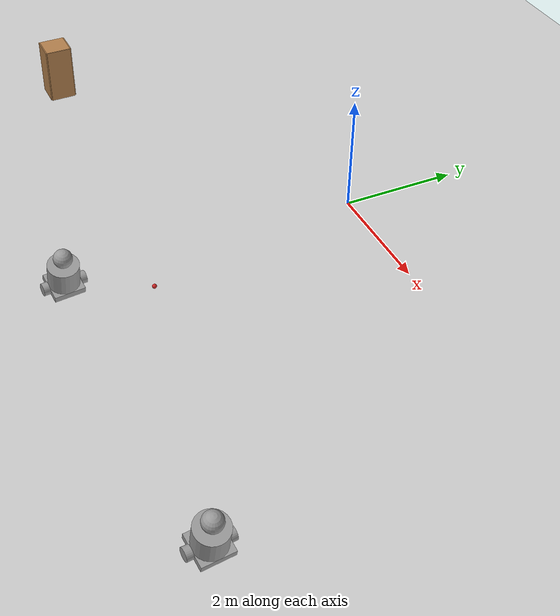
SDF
<sdf version="1.6">
 <world name="default">
  <model name="ground_plane">
   <static>1</static>
   <link name="link">
    <collision name="collision">
     <geometry><plane><normal>0 0 1</normal><size>100 100</size></plane></geometry>
     <surface>
      <contact><collide_bitmask>65535</collide_bitmask></contact>
      <friction><ode><mu>100</mu><mu2>50</mu2></ode></friction>
     </surface>
    </collision>
    <visual name="visual">
     <cast_shadows>0</cast_shadows>
     <geometry><plane><normal>0 0 1</normal><size>100 100</size></plane></geometry>
     <material>
      <script><uri>file://media/materials/scripts/gazebo.material</uri><name>Gazebo/Grey</name></script>
     </material>
    </visual>
   </link>
  </model>
  <model name="cabinet">
   <static>1</static>
   <link name="cabinet_bottom_plate">
    <inertial>
     <pose>0 0 -1 0 -0 0</pose>
     <inertia><ixx>2.05</ixx><ixy>0</ixy><ixz>0</ixz><iyy>2.05</iyy><iyz>0</iyz><izz>2.05</izz></inertia>
     <mass>25</mass>
    </inertial>
    <collision name="cabinet_bottom_plate_geom">
     <pose>0 0 0.01 0 -0 0</pose>
     <geometry><box><size>0.45 0.45 0.02</size></box></geometry>
    </collision>
    <visual name="cabinet_bottom_plate_geom_visual">
     <pose>0 0 0.01 0 -0 0</pose>
     <geometry><box><size>0.45 0.45 0.02</size></box></geometry>
     <material>
      <script><uri>file://media/materials/scripts/gazebo.material</uri><name>Gazebo/Wood</name></script>
     </material>
    </visual>
    <collision name="cabinet_bottom_plate_geom_cabinet_back_plate">
     <pose>0.235 0 0.51 0 -0 0</pose>
     <geometry><box><size>0.02 0.45 1.02</size></box></geometry>
    </collision>
    <visual name="cabinet_bottom_plate_geom_cabinet_back_plate_visual">
     <pose>0.235 0 0.51 0 -0 0</pose>
     <geometry><box><size>0.02 0.45 1.02</size></box></geometry>
     <material>
      <script><uri>file://media/materials/scripts/gazebo.material</uri><name>Gazebo/Wood</name></script>
     </material>
    </visual>
    <collision name="cabinet_bottom_plate_geom_cabinet_left_plate">
     <pose>0 0.235 0.51 0 -0 0</pose>
     <geometry><box><size>0.45 0.02 1.02</size></box></geometry>
    </collision>
    <visual name="cabinet_bottom_plate_geom_cabinet_left_plate_visual">
     <pose>0 0.235 0.51 0 -0 0</pose>
     <geometry><box><size>0.45 0.02 1.02</size></box></geometry>
     <material>
      <script><uri>file://media/materials/scripts/gazebo.material</uri><name>Gazebo/Wood</name></script>
     </material>
    </visual>
    <collision name="cabinet_bottom_plate_geom_cabinet_middle_plate">
     <pose>0 0 0.51 0 -0 0</pose>
     <geometry><box><size>0.45 0.45 0.02</size></box></geometry>
    </collision>
    <visual name="cabinet_bottom_plate_geom_cabinet_middle_plate_visual">
     <pose>0 0 0.51 0 -0 0</pose>
     <geometry><box><size>0.45 0.45 0.02</size></box></geometry>
     <material>
      <script><uri>file://media/materials/scripts/gazebo.material</uri><name>Gazebo/Wood</name></script>
     </material>
    </visual>
    <collision name="cabinet_bottom_plate_geom_cabinet_right_plate">
     <pose>0 -0.235 0.51 0 -0 0</pose>
     <geometry><box><size>0.45 0.02 1.02</size></box></geometry>
    </collision>
    <visual name="cabinet_bottom_plate_geom_cabinet_right_plate_visual">
     <pose>0 -0.235 0.51 0 -0 0</pose>
     <geometry><box><size>0.45 0.02 1.02</size></box></geometry>
     <material>
      <script><uri>file://media/materials/scripts/gazebo.material</uri><name>Gazebo/Wood</name></script>
     </material>
    </visual>
    <collision name="cabinet_bottom_plate_geom_cabinet_top_plate">
     <pose>0 0 1.01 0 -0 0</pose>
     <geometry><box><size>0.45 0.45 0.02</size></box></geometry>
    </collision>
    <visual name="cabinet_bottom_plate_geom_cabinet_top_plate_visual">
     <pose>0 0 1.01 0 -0 0</pose>
     <geometry><box><size>0.45 0.45 0.02</size></box></geometry>
     <material>
      <script><uri>file://media/materials/scripts/gazebo.material</uri><name>Gazebo/Wood</name></script>
     </material>
    </visual>
   </link>
   <pose>-5.45597 -3.36278 0 0 -0 0</pose>
  </model>
  <model name="RoboModel">
   <link name="link_0">
    <pose>0.004 1e-06 -0.17 0 -0 0</pose>
    <inertial>
     <mass>1</mass>
     <inertia>
      <ixx>0.166667</ixx>
      <ixy>0</ixy>
      <ixz>0</ixz>
      <iyy>0.166667</iyy>
      <iyz>0</iyz>
      <izz>0.166667</izz>
     </inertia>
    </inertial>
    <visual name="visual">
     <geometry><box><size>0.5 0.5 0.1</size></box></geometry>
     <material>
      <lighting>1</lighting>
      <script><uri>file://media/materials/scripts/gazebo.material</uri><name>Gazebo/Grey</name></script>
      <shader type="pixel"><normal_map>__default__</normal_map></shader>
      <ambient>0.3 0.3 0.3 1</ambient>
      <diffuse>0.7 0.7 0.7 1</diffuse>
      <specular>0.01 0.01 0.01 1</specular>
      <emissive>0 0 0 1</emissive>
     </material>
    </visual>
    <collision name="collision">
     <geometry><box><size>0.5 0.5 0.1</size></box></geometry>
     <surface>
      <friction>
       <ode><mu>1</mu><mu2>1</mu2><fdir1>0 0 0</fdir1><slip1>0</slip1><slip2>0</slip2></ode>
       <torsional>
        <coefficient>1</coefficient>
        <patch_radius>0</patch_radius>
        <surface_radius>0</surface_radius>
        <use_patch_radius>1</use_patch_radius>
        <ode><slip>0</slip></ode>
       </torsional>
      </friction>
      <bounce><restitution_coefficient>0</restitution_coefficient><threshold>1e+06</threshold></bounce>
      <contact>
       <collide_without_contact>0</collide_without_contact>
       <collide_without_contact_bitmask>1</collide_without_contact_bitmask>
       <collide_bitmask>1</collide_bitmask>
       <ode>
        <soft_cfm>0</soft_cfm>
        <soft_erp>0.2</soft_erp>
        <kp>1e+13</kp>
        <kd>1</kd>
        <max_vel>0.01</max_vel>
        <min_depth>0</min_depth>
       </ode>
       <bullet>
        <split_impulse>1</split_impulse>
        <split_impulse_penetration_threshold>-0.01</split_impulse_penetration_threshold>
        <soft_cfm>0</soft_cfm>
        <soft_erp>0.2</soft_erp>
        <kp>1e+13</kp>
        <kd>1</kd>
       </bullet>
      </contact>
     </surface>
    </collision>
   </link>
   <link name="link_1">
    <pose>0.004 1e-06 0.08 0 -0 0</pose>
    <inertial>
     <mass>1</mass>
     <inertia><ixx>0.145833</ixx><ixy>0</ixy><ixz>0</ixz><iyy>0.145833</iyy><iyz>0</iyz><izz>0.125</izz></inertia>
    </inertial>
    <visual name="visual">
     <geometry><cylinder><radius>0.25</radius><length>0.4</length></cylinder></geometry>
     <material>
      <lighting>1</lighting>
      <script><uri>file://media/materials/scripts/gazebo.material</uri><name>Gazebo/Grey</name></script>
      <shader type="pixel"><normal_map>__default__</normal_map></shader>
      <ambient>0.3 0.3 0.3 1</ambient>
      <diffuse>0.7 0.7 0.7 1</diffuse>
      <specular>0.01 0.01 0.01 1</specular>
      <emissive>0 0 0 1</emissive>
     </material>
    </visual>
    <collision name="collision">
     <geometry><cylinder><radius>0.25</radius><length>0.4</length></cylinder></geometry>
     <surface>
      <friction>
       <ode><mu>1</mu><mu2>1</mu2><fdir1>0 0 0</fdir1><slip1>0</slip1><slip2>0</slip2></ode>
       <torsional>
        <coefficient>1</coefficient>
        <patch_radius>0</patch_radius>
        <surface_radius>0</surface_radius>
        <use_patch_radius>1</use_patch_radius>
        <ode><slip>0</slip></ode>
       </torsional>
      </friction>
      <bounce><restitution_coefficient>0</restitution_coefficient><threshold>1e+06</threshold></bounce>
      <contact>
       <collide_without_contact>0</collide_without_contact>
       <collide_without_contact_bitmask>1</collide_without_contact_bitmask>
       <collide_bitmask>1</collide_bitmask>
       <ode>
        <soft_cfm>0</soft_cfm>
        <soft_erp>0.2</soft_erp>
        <kp>1e+13</kp>
        <kd>1</kd>
        <max_vel>0.01</max_vel>
        <min_depth>0</min_depth>
       </ode>
       <bullet>
        <split_impulse>1</split_impulse>
        <split_impulse_penetration_threshold>-0.01</split_impulse_penetration_threshold>
        <soft_cfm>0</soft_cfm>
        <soft_erp>0.2</soft_erp>
        <kp>1e+13</kp>
        <kd>1</kd>
       </bullet>
      </contact>
     </surface>
    </collision>
   </link>
   <link name="link_4">
    <pose>0.004 1e-06 0.43 0 -0 0</pose>
    <inertial>
     <mass>1</mass>
     <inertia><ixx>0.1</ixx><ixy>0</ixy><ixz>0</ixz><iyy>0.1</iyy><iyz>0</iyz><izz>0.1</izz></inertia>
    </inertial>
    <visual name="visual">
     <geometry><sphere><radius>0.15</radius></sphere></geometry>
     <material>
      <lighting>1</lighting>
      <script><uri>file://media/materials/scripts/gazebo.material</uri><name>Gazebo/Grey</name></script>
      <shader type="pixel"><normal_map>__default__</normal_map></shader>
      <ambient>0.3 0.3 0.3 1</ambient>
      <diffuse>0.7 0.7 0.7 1</diffuse>
      <specular>0.01 0.01 0.01 1</specular>
      <emissive>0 0 0 1</emissive>
     </material>
    </visual>
    <collision name="collision">
     <geometry><sphere><radius>0.15</radius></sphere></geometry>
     <surface>
      <friction>
       <ode><mu>1</mu><mu2>1</mu2><fdir1>0 0 0</fdir1><slip1>0</slip1><slip2>0</slip2></ode>
       <torsional>
        <coefficient>1</coefficient>
        <patch_radius>0</patch_radius>
        <surface_radius>0</surface_radius>
        <use_patch_radius>1</use_patch_radius>
        <ode><slip>0</slip></ode>
       </torsional>
      </friction>
      <bounce><restitution_coefficient>0</restitution_coefficient><threshold>1e+06</threshold></bounce>
      <contact>
       <collide_without_contact>0</collide_without_contact>
       <collide_without_contact_bitmask>1</collide_without_contact_bitmask>
       <collide_bitmask>1</collide_bitmask>
       <ode>
        <soft_cfm>0</soft_cfm>
        <soft_erp>0.2</soft_erp>
        <kp>1e+13</kp>
        <kd>1</kd>
        <max_vel>0.01</max_vel>
        <min_depth>0</min_depth>
       </ode>
       <bullet>
        <split_impulse>1</split_impulse>
        <split_impulse_penetration_threshold>-0.01</split_impulse_penetration_threshold>
        <soft_cfm>0</soft_cfm>
        <soft_erp>0.2</soft_erp>
        <kp>1e+13</kp>
        <kd>1</kd>
       </bullet>
      </contact>
     </surface>
    </collision>
   </link>
   <link name="link_5">
    <pose>-0.016 -0.300012 -0.17 1.5707 -0 0</pose>
    <inertial>
     <mass>1</mass>
     <inertia><ixx>0.145833</ixx><ixy>0</ixy><ixz>0</ixz><iyy>0.145833</iyy><iyz>0</iyz><izz>0.125</izz></inertia>
    </inertial>
    <visual name="visual">
     <geometry><cylinder><radius>0.1</radius><length>0.1</length></cylinder></geometry>
     <material>
      <lighting>1</lighting>
      <script><uri>file://media/materials/scripts/gazebo.material</uri><name>Gazebo/Grey</name></script>
      <shader type="pixel"><normal_map>__default__</normal_map></shader>
      <ambient>0.3 0.3 0.3 1</ambient>
      <diffuse>0.7 0.7 0.7 1</diffuse>
      <specular>0.01 0.01 0.01 1</specular>
      <emissive>0 0 0 1</emissive>
     </material>
    </visual>
    <collision name="collision">
     <geometry><cylinder><radius>0.1</radius><length>0.1</length></cylinder></geometry>
     <surface>
      <friction>
       <ode><mu>1</mu><mu2>1</mu2><fdir1>0 0 0</fdir1><slip1>0</slip1><slip2>0</slip2></ode>
       <torsional>
        <coefficient>1</coefficient>
        <patch_radius>0</patch_radius>
        <surface_radius>0</surface_radius>
        <use_patch_radius>1</use_patch_radius>
        <ode><slip>0</slip></ode>
       </torsional>
      </friction>
      <bounce><restitution_coefficient>0</restitution_coefficient><threshold>1e+06</threshold></bounce>
      <contact>
       <collide_without_contact>0</collide_without_contact>
       <collide_without_contact_bitmask>1</collide_without_contact_bitmask>
       <collide_bitmask>1</collide_bitmask>
       <ode>
        <soft_cfm>0</soft_cfm>
        <soft_erp>0.2</soft_erp>
        <kp>1e+13</kp>
        <kd>1</kd>
        <max_vel>0.01</max_vel>
        <min_depth>0</min_depth>
       </ode>
       <bullet>
        <split_impulse>1</split_impulse>
        <split_impulse_penetration_threshold>-0.01</split_impulse_penetration_threshold>
        <soft_cfm>0</soft_cfm>
        <soft_erp>0.2</soft_erp>
        <kp>1e+13</kp>
        <kd>1</kd>
       </bullet>
      </contact>
     </surface>
    </collision>
   </link>
   <link name="link_5_clone">
    <pose>0.004 0.30001 -0.17 1.5707 -0 0</pose>
    <inertial>
     <mass>1</mass>
     <inertia><ixx>0.145833</ixx><ixy>0</ixy><ixz>0</ixz><iyy>0.145833</iyy><iyz>0</iyz><izz>0.125</izz></inertia>
    </inertial>
    <visual name="visual">
     <geometry><cylinder><radius>0.1</radius><length>0.1</length></cylinder></geometry>
     <material>
      <lighting>1</lighting>
      <script><uri>file://media/materials/scripts/gazebo.material</uri><name>Gazebo/Grey</name></script>
      <shader type="pixel"><normal_map>__default__</normal_map></shader>
      <ambient>0.3 0.3 0.3 1</ambient>
      <diffuse>0.7 0.7 0.7 1</diffuse>
      <specular>0.01 0.01 0.01 1</specular>
      <emissive>0 0 0 1</emissive>
     </material>
    </visual>
    <collision name="collision">
     <geometry><cylinder><radius>0.1</radius><length>0.1</length></cylinder></geometry>
     <surface>
      <friction>
       <ode><mu>1</mu><mu2>1</mu2><fdir1>0 0 0</fdir1><slip1>0</slip1><slip2>0</slip2></ode>
       <torsional>
        <coefficient>1</coefficient>
        <patch_radius>0</patch_radius>
        <surface_radius>0</surface_radius>
        <use_patch_radius>1</use_patch_radius>
        <ode><slip>0</slip></ode>
       </torsional>
      </friction>
      <bounce><restitution_coefficient>0</restitution_coefficient><threshold>1e+06</threshold></bounce>
      <contact>
       <collide_without_contact>0</collide_without_contact>
       <collide_without_contact_bitmask>1</collide_without_contact_bitmask>
       <collide_bitmask>1</collide_bitmask>
       <ode>
        <soft_cfm>0</soft_cfm>
        <soft_erp>0.2</soft_erp>
        <kp>1e+13</kp>
        <kd>1</kd>
        <max_vel>0.01</max_vel>
        <min_depth>0</min_depth>
       </ode>
       <bullet>
        <split_impulse>1</split_impulse>
        <split_impulse_penetration_threshold>-0.01</split_impulse_penetration_threshold>
        <soft_cfm>0</soft_cfm>
        <soft_erp>0.2</soft_erp>
        <kp>1e+13</kp>
        <kd>1</kd>
       </bullet>
      </contact>
     </surface>
    </collision>
   </link>
   <joint name="link_0_JOINT_2" type="revolute">
    <parent>link_0</parent>
    <child>link_5_clone</child>
    <axis>
     <xyz>0 0 1</xyz>
     <use_parent_model_frame>0</use_parent_model_frame>
     <limit>
      <lower>-1.79769e+308</lower>
      <upper>1.79769e+308</upper>
      <effort>-1</effort>
      <velocity>-1</velocity>
     </limit>
     <dynamics>
      <spring_reference>0</spring_reference>
      <spring_stiffness>0</spring_stiffness>
      <damping>0</damping>
     </dynamics>
    </axis>
    <physics>
     <ode><limit><cfm>0</cfm><erp>0.2</erp></limit><suspension><cfm>0</cfm><erp>0.2</erp></suspension></ode>
    </physics>
   </joint>
   <joint name="link_0_JOINT_3" type="revolute">
    <parent>link_0</parent>
    <child>link_5</child>
    <axis>
     <xyz>0 0 -1</xyz>
     <use_parent_model_frame>0</use_parent_model_frame>
     <limit>
      <lower>-1.79769e+308</lower>
      <upper>1.79769e+308</upper>
      <effort>-1</effort>
      <velocity>-1</velocity>
     </limit>
     <dynamics>
      <spring_reference>0</spring_reference>
      <spring_stiffness>0</spring_stiffness>
      <damping>0</damping>
     </dynamics>
    </axis>
    <physics>
     <ode><limit><cfm>0</cfm><erp>0.2</erp></limit><suspension><cfm>0</cfm><erp>0.2</erp></suspension></ode>
    </physics>
   </joint>
   <joint name="link_0_JOINT_4" type="revolute">
    <parent>link_0</parent>
    <child>link_1</child>
    <axis>
     <xyz>0 0 1</xyz>
     <use_parent_model_frame>0</use_parent_model_frame>
     <limit>
      <lower>-1.79769e+308</lower>
      <upper>1.79769e+308</upper>
      <effort>-1</effort>
      <velocity>-1</velocity>
     </limit>
     <dynamics>
      <spring_reference>0</spring_reference>
      <spring_stiffness>0</spring_stiffness>
      <damping>0</damping>
     </dynamics>
    </axis>
    <physics>
     <ode><limit><cfm>0</cfm><erp>0.2</erp></limit><suspension><cfm>0</cfm><erp>0.2</erp></suspension></ode>
    </physics>
   </joint>
   <joint name="link_1_JOINT_5" type="ball">
    <parent>link_1</parent>
    <child>link_4</child>
    <physics>
     <ode><limit><cfm>0</cfm><erp>0.2</erp></limit><suspension><cfm>0</cfm><erp>0.2</erp></suspension></ode>
    </physics>
   </joint>
   <static>0</static>
   <pose>5.4217 -4.86427 0.26603 0.006483 0.192107 0.085346</pose>
  </model>
  <model name="RoboModel_0">
   <link name="link_0">
    <pose>0.004 1e-06 -0.17 0 -0 0</pose>
    <inertial>
     <mass>1</mass>
     <inertia>
      <ixx>0.166667</ixx>
      <ixy>0</ixy>
      <ixz>0</ixz>
      <iyy>0.166667</iyy>
      <iyz>0</iyz>
      <izz>0.166667</izz>
     </inertia>
    </inertial>
    <visual name="visual">
     <geometry><box><size>0.5 0.5 0.1</size></box></geometry>
     <material>
      <lighting>1</lighting>
      <script><uri>file://media/materials/scripts/gazebo.material</uri><name>Gazebo/Grey</name></script>
      <shader type="pixel"><normal_map>__default__</normal_map></shader>
      <ambient>0.3 0.3 0.3 1</ambient>
      <diffuse>0.7 0.7 0.7 1</diffuse>
      <specular>0.01 0.01 0.01 1</specular>
      <emissive>0 0 0 1</emissive>
     </material>
    </visual>
    <collision name="collision">
     <geometry><box><size>0.5 0.5 0.1</size></box></geometry>
     <surface>
      <friction>
       <ode><mu>1</mu><mu2>1</mu2><fdir1>0 0 0</fdir1><slip1>0</slip1><slip2>0</slip2></ode>
       <torsional>
        <coefficient>1</coefficient>
        <patch_radius>0</patch_radius>
        <surface_radius>0</surface_radius>
        <use_patch_radius>1</use_patch_radius>
        <ode><slip>0</slip></ode>
       </torsional>
      </friction>
      <bounce><restitution_coefficient>0</restitution_coefficient><threshold>1e+06</threshold></bounce>
      <contact>
       <collide_without_contact>0</collide_without_contact>
       <collide_without_contact_bitmask>1</collide_without_contact_bitmask>
       <collide_bitmask>1</collide_bitmask>
       <ode>
        <soft_cfm>0</soft_cfm>
        <soft_erp>0.2</soft_erp>
        <kp>1e+13</kp>
        <kd>1</kd>
        <max_vel>0.01</max_vel>
        <min_depth>0</min_depth>
       </ode>
       <bullet>
        <split_impulse>1</split_impulse>
        <split_impulse_penetration_threshold>-0.01</split_impulse_penetration_threshold>
        <soft_cfm>0</soft_cfm>
        <soft_erp>0.2</soft_erp>
        <kp>1e+13</kp>
        <kd>1</kd>
       </bullet>
      </contact>
     </surface>
    </collision>
   </link>
   <link name="link_1">
    <pose>0.004 1e-06 0.08 0 -0 0</pose>
    <inertial>
     <mass>1</mass>
     <inertia><ixx>0.145833</ixx><ixy>0</ixy><ixz>0</ixz><iyy>0.145833</iyy><iyz>0</iyz><izz>0.125</izz></inertia>
    </inertial>
    <visual name="visual">
     <geometry><cylinder><radius>0.25</radius><length>0.4</length></cylinder></geometry>
     <material>
      <lighting>1</lighting>
      <script><uri>file://media/materials/scripts/gazebo.material</uri><name>Gazebo/Grey</name></script>
      <shader type="pixel"><normal_map>__default__</normal_map></shader>
      <ambient>0.3 0.3 0.3 1</ambient>
      <diffuse>0.7 0.7 0.7 1</diffuse>
      <specular>0.01 0.01 0.01 1</specular>
      <emissive>0 0 0 1</emissive>
     </material>
    </visual>
    <collision name="collision">
     <geometry><cylinder><radius>0.25</radius><length>0.4</length></cylinder></geometry>
     <surface>
      <friction>
       <ode><mu>1</mu><mu2>1</mu2><fdir1>0 0 0</fdir1><slip1>0</slip1><slip2>0</slip2></ode>
       <torsional>
        <coefficient>1</coefficient>
        <patch_radius>0</patch_radius>
        <surface_radius>0</surface_radius>
        <use_patch_radius>1</use_patch_radius>
        <ode><slip>0</slip></ode>
       </torsional>
      </friction>
      <bounce><restitution_coefficient>0</restitution_coefficient><threshold>1e+06</threshold></bounce>
      <contact>
       <collide_without_contact>0</collide_without_contact>
       <collide_without_contact_bitmask>1</collide_without_contact_bitmask>
       <collide_bitmask>1</collide_bitmask>
       <ode>
        <soft_cfm>0</soft_cfm>
        <soft_erp>0.2</soft_erp>
        <kp>1e+13</kp>
        <kd>1</kd>
        <max_vel>0.01</max_vel>
        <min_depth>0</min_depth>
       </ode>
       <bullet>
        <split_impulse>1</split_impulse>
        <split_impulse_penetration_threshold>-0.01</split_impulse_penetration_threshold>
        <soft_cfm>0</soft_cfm>
        <soft_erp>0.2</soft_erp>
        <kp>1e+13</kp>
        <kd>1</kd>
       </bullet>
      </contact>
     </surface>
    </collision>
   </link>
   <link name="link_4">
    <pose>0.004 1e-06 0.43 0 -0 0</pose>
    <inertial>
     <mass>1</mass>
     <inertia><ixx>0.1</ixx><ixy>0</ixy><ixz>0</ixz><iyy>0.1</iyy><iyz>0</iyz><izz>0.1</izz></inertia>
    </inertial>
    <visual name="visual">
     <geometry><sphere><radius>0.15</radius></sphere></geometry>
     <material>
      <lighting>1</lighting>
      <script><uri>file://media/materials/scripts/gazebo.material</uri><name>Gazebo/Grey</name></script>
      <shader type="pixel"><normal_map>__default__</normal_map></shader>
      <ambient>0.3 0.3 0.3 1</ambient>
      <diffuse>0.7 0.7 0.7 1</diffuse>
      <specular>0.01 0.01 0.01 1</specular>
      <emissive>0 0 0 1</emissive>
     </material>
    </visual>
    <collision name="collision">
     <geometry><sphere><radius>0.15</radius></sphere></geometry>
     <surface>
      <friction>
       <ode><mu>1</mu><mu2>1</mu2><fdir1>0 0 0</fdir1><slip1>0</slip1><slip2>0</slip2></ode>
       <torsional>
        <coefficient>1</coefficient>
        <patch_radius>0</patch_radius>
        <surface_radius>0</surface_radius>
        <use_patch_radius>1</use_patch_radius>
        <ode><slip>0</slip></ode>
       </torsional>
      </friction>
      <bounce><restitution_coefficient>0</restitution_coefficient><threshold>1e+06</threshold></bounce>
      <contact>
       <collide_without_contact>0</collide_without_contact>
       <collide_without_contact_bitmask>1</collide_without_contact_bitmask>
       <collide_bitmask>1</collide_bitmask>
       <ode>
        <soft_cfm>0</soft_cfm>
        <soft_erp>0.2</soft_erp>
        <kp>1e+13</kp>
        <kd>1</kd>
        <max_vel>0.01</max_vel>
        <min_depth>0</min_depth>
       </ode>
       <bullet>
        <split_impulse>1</split_impulse>
        <split_impulse_penetration_threshold>-0.01</split_impulse_penetration_threshold>
        <soft_cfm>0</soft_cfm>
        <soft_erp>0.2</soft_erp>
        <kp>1e+13</kp>
        <kd>1</kd>
       </bullet>
      </contact>
     </surface>
    </collision>
   </link>
   <link name="link_5">
    <pose>-0.016 -0.300012 -0.17 1.5707 -0 0</pose>
    <inertial>
     <mass>1</mass>
     <inertia><ixx>0.145833</ixx><ixy>0</ixy><ixz>0</ixz><iyy>0.145833</iyy><iyz>0</iyz><izz>0.125</izz></inertia>
    </inertial>
    <visual name="visual">
     <geometry><cylinder><radius>0.1</radius><length>0.1</length></cylinder></geometry>
     <material>
      <lighting>1</lighting>
      <script><uri>file://media/materials/scripts/gazebo.material</uri><name>Gazebo/Grey</name></script>
      <shader type="pixel"><normal_map>__default__</normal_map></shader>
      <ambient>0.3 0.3 0.3 1</ambient>
      <diffuse>0.7 0.7 0.7 1</diffuse>
      <specular>0.01 0.01 0.01 1</specular>
      <emissive>0 0 0 1</emissive>
     </material>
    </visual>
    <collision name="collision">
     <geometry><cylinder><radius>0.1</radius><length>0.1</length></cylinder></geometry>
     <surface>
      <friction>
       <ode><mu>1</mu><mu2>1</mu2><fdir1>0 0 0</fdir1><slip1>0</slip1><slip2>0</slip2></ode>
       <torsional>
        <coefficient>1</coefficient>
        <patch_radius>0</patch_radius>
        <surface_radius>0</surface_radius>
        <use_patch_radius>1</use_patch_radius>
        <ode><slip>0</slip></ode>
       </torsional>
      </friction>
      <bounce><restitution_coefficient>0</restitution_coefficient><threshold>1e+06</threshold></bounce>
      <contact>
       <collide_without_contact>0</collide_without_contact>
       <collide_without_contact_bitmask>1</collide_without_contact_bitmask>
       <collide_bitmask>1</collide_bitmask>
       <ode>
        <soft_cfm>0</soft_cfm>
        <soft_erp>0.2</soft_erp>
        <kp>1e+13</kp>
        <kd>1</kd>
        <max_vel>0.01</max_vel>
        <min_depth>0</min_depth>
       </ode>
       <bullet>
        <split_impulse>1</split_impulse>
        <split_impulse_penetration_threshold>-0.01</split_impulse_penetration_threshold>
        <soft_cfm>0</soft_cfm>
        <soft_erp>0.2</soft_erp>
        <kp>1e+13</kp>
        <kd>1</kd>
       </bullet>
      </contact>
     </surface>
    </collision>
   </link>
   <link name="link_5_clone">
    <pose>0.004 0.30001 -0.17 1.5707 -0 0</pose>
    <inertial>
     <mass>1</mass>
     <inertia><ixx>0.145833</ixx><ixy>0</ixy><ixz>0</ixz><iyy>0.145833</iyy><iyz>0</iyz><izz>0.125</izz></inertia>
    </inertial>
    <visual name="visual">
     <geometry><cylinder><radius>0.1</radius><length>0.1</length></cylinder></geometry>
     <material>
      <lighting>1</lighting>
      <script><uri>file://media/materials/scripts/gazebo.material</uri><name>Gazebo/Grey</name></script>
      <shader type="pixel"><normal_map>__default__</normal_map></shader>
      <ambient>0.3 0.3 0.3 1</ambient>
      <diffuse>0.7 0.7 0.7 1</diffuse>
      <specular>0.01 0.01 0.01 1</specular>
      <emissive>0 0 0 1</emissive>
     </material>
    </visual>
    <collision name="collision">
     <geometry><cylinder><radius>0.1</radius><length>0.1</length></cylinder></geometry>
     <surface>
      <friction>
       <ode><mu>1</mu><mu2>1</mu2><fdir1>0 0 0</fdir1><slip1>0</slip1><slip2>0</slip2></ode>
       <torsional>
        <coefficient>1</coefficient>
        <patch_radius>0</patch_radius>
        <surface_radius>0</surface_radius>
        <use_patch_radius>1</use_patch_radius>
        <ode><slip>0</slip></ode>
       </torsional>
      </friction>
      <bounce><restitution_coefficient>0</restitution_coefficient><threshold>1e+06</threshold></bounce>
      <contact>
       <collide_without_contact>0</collide_without_contact>
       <collide_without_contact_bitmask>1</collide_without_contact_bitmask>
       <collide_bitmask>1</collide_bitmask>
       <ode>
        <soft_cfm>0</soft_cfm>
        <soft_erp>0.2</soft_erp>
        <kp>1e+13</kp>
        <kd>1</kd>
        <max_vel>0.01</max_vel>
        <min_depth>0</min_depth>
       </ode>
       <bullet>
        <split_impulse>1</split_impulse>
        <split_impulse_penetration_threshold>-0.01</split_impulse_penetration_threshold>
        <soft_cfm>0</soft_cfm>
        <soft_erp>0.2</soft_erp>
        <kp>1e+13</kp>
        <kd>1</kd>
       </bullet>
      </contact>
     </surface>
    </collision>
   </link>
   <joint name="link_0_JOINT_2" type="revolute">
    <parent>link_0</parent>
    <child>link_5_clone</child>
    <axis>
     <xyz>0 0 1</xyz>
     <use_parent_model_frame>0</use_parent_model_frame>
     <limit>
      <lower>-1.79769e+308</lower>
      <upper>1.79769e+308</upper>
      <effort>-1</effort>
      <velocity>-1</velocity>
     </limit>
     <dynamics>
      <spring_reference>0</spring_reference>
      <spring_stiffness>0</spring_stiffness>
      <damping>0</damping>
     </dynamics>
    </axis>
    <physics>
     <ode><limit><cfm>0</cfm><erp>0.2</erp></limit><suspension><cfm>0</cfm><erp>0.2</erp></suspension></ode>
    </physics>
   </joint>
   <joint name="link_0_JOINT_3" type="revolute">
    <parent>link_0</parent>
    <child>link_5</child>
    <axis>
     <xyz>0 0 -1</xyz>
     <use_parent_model_frame>0</use_parent_model_frame>
     <limit>
      <lower>-1.79769e+308</lower>
      <upper>1.79769e+308</upper>
      <effort>-1</effort>
      <velocity>-1</velocity>
     </limit>
     <dynamics>
      <spring_reference>0</spring_reference>
      <spring_stiffness>0</spring_stiffness>
      <damping>0</damping>
     </dynamics>
    </axis>
    <physics>
     <ode><limit><cfm>0</cfm><erp>0.2</erp></limit><suspension><cfm>0</cfm><erp>0.2</erp></suspension></ode>
    </physics>
   </joint>
   <joint name="link_0_JOINT_4" type="revolute">
    <parent>link_0</parent>
    <child>link_1</child>
    <axis>
     <xyz>0 0 1</xyz>
     <use_parent_model_frame>0</use_parent_model_frame>
     <limit>
      <lower>-1.79769e+308</lower>
      <upper>1.79769e+308</upper>
      <effort>-1</effort>
      <velocity>-1</velocity>
     </limit>
     <dynamics>
      <spring_reference>0</spring_reference>
      <spring_stiffness>0</spring_stiffness>
      <damping>0</damping>
     </dynamics>
    </axis>
    <physics>
     <ode><limit><cfm>0</cfm><erp>0.2</erp></limit><suspension><cfm>0</cfm><erp>0.2</erp></suspension></ode>
    </physics>
   </joint>
   <joint name="link_1_JOINT_5" type="ball">
    <parent>link_1</parent>
    <child>link_4</child>
    <physics>
     <ode><limit><cfm>0</cfm><erp>0.2</erp></limit><suspension><cfm>0</cfm><erp>0.2</erp></suspension></ode>
    </physics>
   </joint>
   <static>0</static>
   <pose>0.089438 -5.02092 0.26603 0.006483 0.192107 0.084376</pose>
  </model>
  <model name="cricket_ball">
   <link name="link">
    <pose>0 0 0.0375 0 -0 0</pose>
    <inertial>
     <mass>0.1467</mass>
     <inertia>
      <ixx>8.25187e-05</ixx>
      <ixy>0</ixy>
      <ixz>0</ixz>
      <iyy>8.25187e-05</iyy>
      <iyz>0</iyz>
      <izz>8.25187e-05</izz>
     </inertia>
    </inertial>
    <collision name="collision">
     <geometry><sphere><radius>0.0375</radius></sphere></geometry>
     <surface>
      <contact>
       <poissons_ratio>0.347</poissons_ratio>
       <elastic_modulus>8.8e+09</elastic_modulus>
       <ode><kp>100000</kp><kd>100</kd><max_vel>100</max_vel><min_depth>0.001</min_depth></ode>
      </contact>
      <friction>
       <torsional>
        <coefficient>1</coefficient>
        <use_patch_radius>0</use_patch_radius>
        <surface_radius>0.01</surface_radius>
       </torsional>
      </friction>
     </surface>
    </collision>
    <visual name="visual">
     <geometry><sphere><radius>0.0375</radius></sphere></geometry>
     <material>
      <script><uri>file://media/materials/scripts/gazebo.material</uri><name>Gazebo/Red</name></script>
     </material>
    </visual>
    <velocity_decay><linear>0</linear><angular>0.005</angular></velocity_decay>
   </link>
   <pose>0.637518 -3.75313 -0.001014 0 -0 0</pose>
  </model>
 </world>
</sdf>
